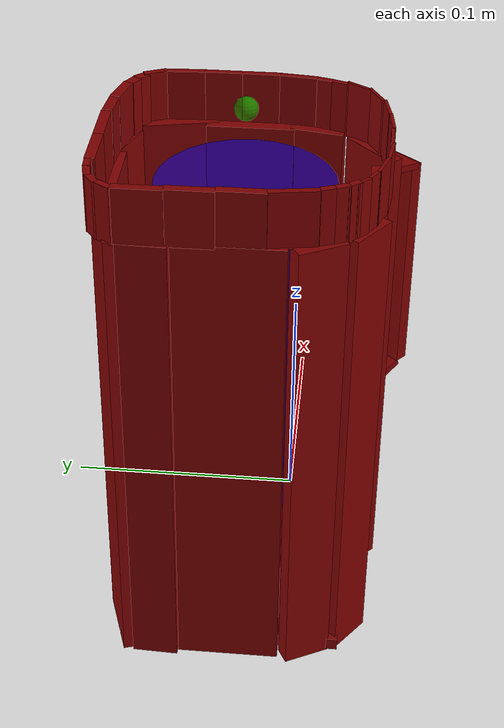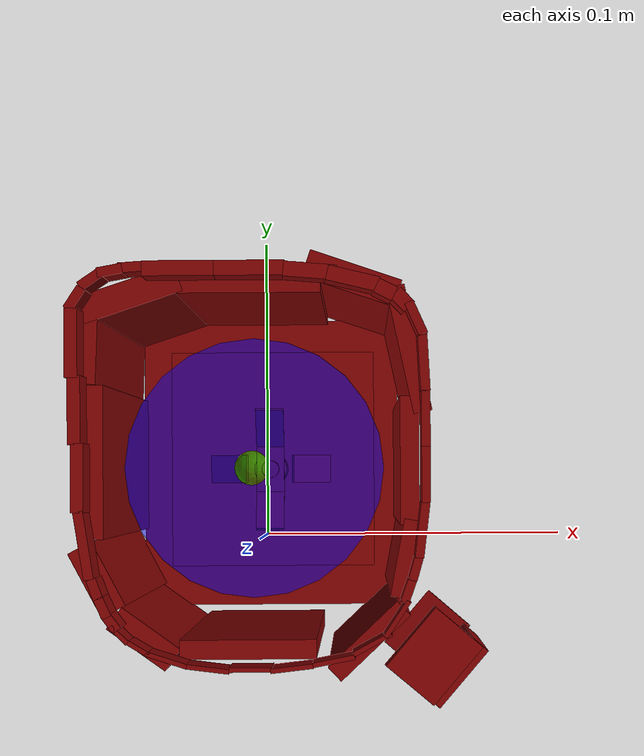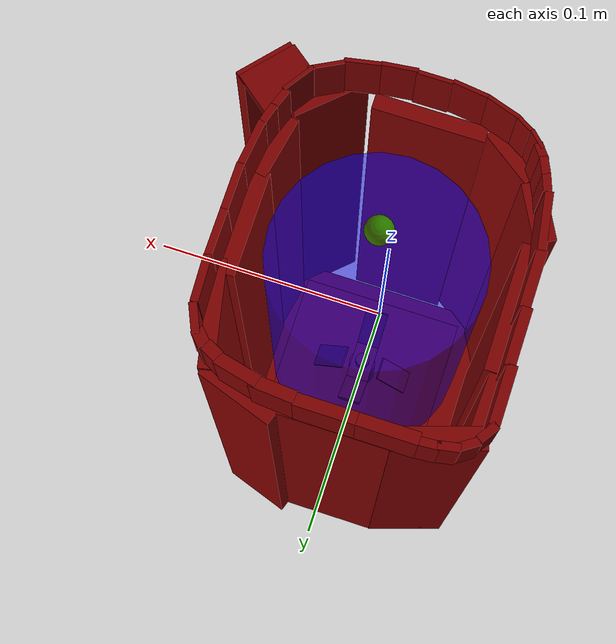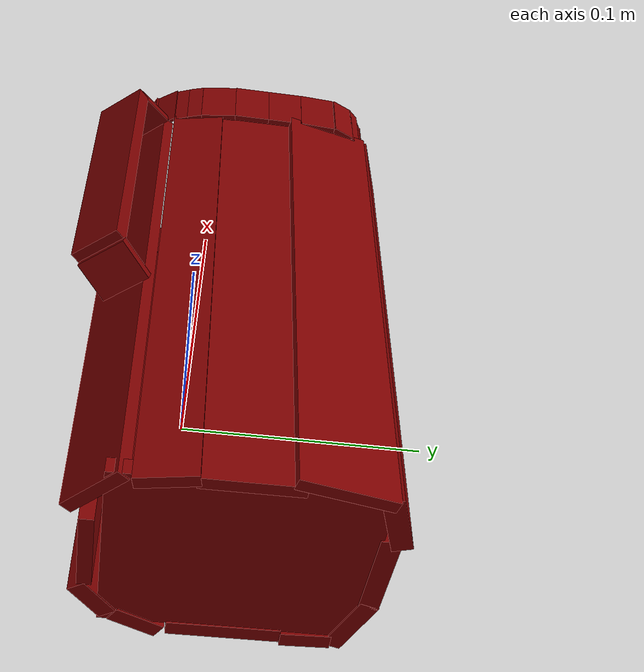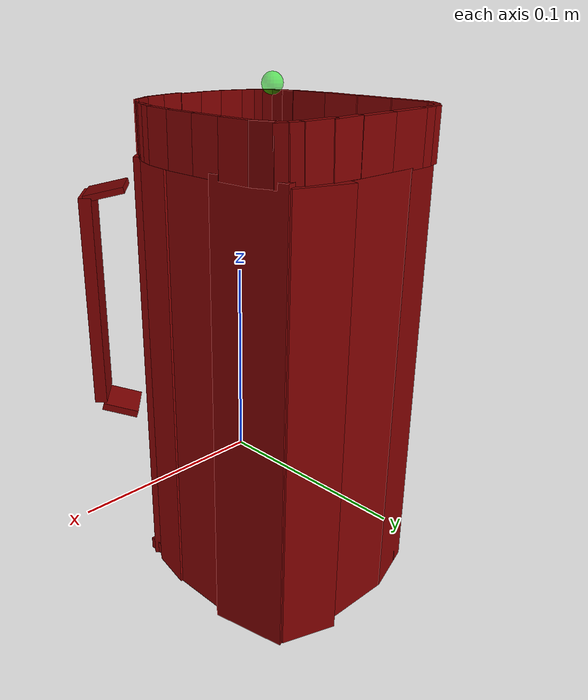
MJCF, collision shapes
<mujoco model="model">
  <option timestep="0.002" gravity="0.0 0.0 -9.81"/>
  <compiler angle="radian"/>
  <asset>
    <mesh file="visuals/blade.obj" name="blade_vis"/>
    <mesh file="visuals/pitcher.obj" name="pitcher_vis"/>
    <mesh file="visuals/pitcher_main.obj" name="pitcher_main_vis"/>
    <material name="pitcher_material" rgba="0.0231687780469656 0.0231687780469656 0.0231687780469656 0.8" shininess="0.44720000000000004" specular="0.31034482758620685"/>
    <texture file="visuals/T_BC001.png" name="blade_material" type="2d"/>
    <material name="blade_material" rgba="1 1 1 1.0" texture="blade_material" shininess="0.44720000000000004" specular="0.31034482758620685"/>
    <texture file="visuals/T_BC001.png" name="pitcher_main_material" type="2d"/>
    <material name="pitcher_main_material" rgba="1 1 1 1.0" texture="pitcher_main_material" shininess="0.44720000000000004" specular="0.31034482758620685"/>
  </asset>
  <default>
    <default class="visual">
      <geom conaffinity="0" contype="0" group="1" type="mesh"/>
    </default>
    <default class="collision">
      <geom group="0" rgba="0.5 0 0 0.5" solref="0.004 1" solimp="0.998 0.998 0.001"/>
    </default>
    <default class="spawn">
      <geom group="0" rgba="1 1 1 0.5" contype="0" conaffinity="0"/>
      <site group="0" rgba="1 1 1 0.5"/>
    </default>
    <default class="region">
      <geom group="1" conaffinity="0" contype="0" rgba="0 1 0 0" mass="0"/>
    </default>
  </default>
  <worldbody>
    <body>
      <body name="object">
        <body name="pitcher">
          <geom mesh="pitcher_vis" type="mesh" solimp="0.998 0.998 0.001" solref="0.001 1" friction="0.95 0.3 0.1" class="visual" material="pitcher_material"/>
          <geom type="box" pos="-0.00204070 0.07906260 0.04826499" size="0.022255271673202515 0.004169562365859747 0.11124669015407562" quat="1.0 0.0 0.0 0.0" class="collision"/>
          <geom type="box" pos="-0.00204070 -0.03178803 0.04826499" size="0.020503073930740356 0.002906262641772628 0.1112467423081398" quat="1.0 0.0 0.0 0.0" class="collision"/>
          <geom type="box" pos="-0.04904354 0.02445237 0.04826499" size="0.0039976914413273335 0.023106157779693604 0.11124677211046219" quat="1.0 0.0 0.0 0.0" class="collision"/>
          <geom class="collision" type="box" pos="0.06077758 -0.04032724 0.08946581" size="0.011404372751712799 0.003000497817993164 0.052568335086107254" quat="0.908416748046875 0.0 0.0 0.4180658161640167" name="pitcher_handle_0"/>
          <geom type="box" pos="0.04659230 0.02445237 0.04826499" size="0.0028223509434610605 0.01922968029975891 0.11305436491966248" quat="1.0 0.0 0.0 0.0" class="collision"/>
          <geom class="collision" type="box" pos="0.05387197 -0.03484775 0.14352105" size="0.011623568832874298 0.009709632024168968 0.001504981075413525" quat="0.9033353328704834 0.09594911336898804 0.04415709897875786 0.41572731733322144" name="pitcher_handle_2"/>
          <geom class="collision" type="box" pos="0.05408701 -0.03335019 0.03249847" size="0.011395718902349472 0.009031037800014019 0.0017822699155658484" quat="0.8995760083198547 -0.12642720341682434 -0.05818355828523636 0.4139974117279053" name="pitcher_handle_1"/>
          <geom type="box" pos="-0.00040757 0.02494217 -0.05911034" size="0.045719780027866364 0.051321711391210556 0.0031872245017439127" quat="1.0 0.0 0.0 0.0" class="collision"/>
          <geom type="box" pos="-0.05087845 0.01972900 0.17119868" size="0.0018874999368563294 0.010145186446607113 0.012653547339141369" quat="1.0 0.0 0.0 0.0" class="collision"/>
          <geom type="box" pos="0.05106356 0.02023902 0.17119868" size="0.0013032063143327832 0.008228748105466366 0.01265357993543148" quat="1.0 0.0 0.0 0.0" class="collision"/>
          <geom type="box" pos="-0.00048702 0.08090556 0.17119868" size="0.010520539246499538 0.0022074836306273937 0.01265360414981842" quat="1.0 0.0 0.0 0.0" class="collision"/>
          <geom type="box" pos="-0.00048702 -0.03650774 0.17119868" size="0.006283494643867016 0.0006978611927479506 0.01265357993543148" quat="1.0 0.0 0.0 0.0" class="collision"/>
          <geom type="box" pos="-0.02120484 0.08090556 0.17119868" size="0.010520530864596367 0.0022074836306273937 0.012653595767915249" quat="1.0 0.0 0.0 0.0" class="collision"/>
          <geom type="box" pos="0.01703493 0.08009607 0.17128454" size="0.002207484794780612 0.007749950513243675 0.01265357993543148" quat="0.7348265647888184 0.012943834997713566 0.0060357931070029736 0.6781046390533447" class="collision"/>
          <geom type="box" pos="0.02970541 0.07771542 0.17124450" size="0.0022074845619499683 0.007749950513243675 0.01265357993543148" quat="0.7845277786254883 0.012444397434592247 0.007007897831499577 0.6199291944503784" class="collision"/>
          <geom type="box" pos="0.03922710 0.07436613 0.17095648" size="0.0022074852604418993 0.0029618453700095415 0.012653580866754055" quat="0.8534063100814819 0.011510993354022503 0.008454038761556149 0.5210505723953247" class="collision"/>
          <geom type="box" pos="0.04415275 0.07136414 0.17079371" size="0.0022074852604418993 0.002961845835670829 0.012653580866754055" quat="0.9270679354667664 0.009975115768611431 0.010221092961728573 0.3746212422847748" class="collision"/>
          <geom type="box" pos="0.05106356 0.03664541 0.17119868" size="0.0013032063143327832 0.008228748105466366 0.01265357993543148" quat="1.0 0.0 0.0 0.0" class="collision"/>
          <geom type="box" pos="0.05062422 0.05280286 0.17119868" size="0.0014155411627143621 0.008228748105466366 0.01265357993543148" quat="0.9996613264083862 0.0 0.0 0.02602369897067547" class="collision"/>
          <geom type="box" pos="0.04842352 0.06587505 0.17119868" size="0.0014155411627143621 0.005163043737411499 0.01265357993543148" quat="0.20852075517177582 0.0 -0.0 -0.9780179262161255" class="collision"/>
          <geom type="box" pos="0.04994868 0.00398666 0.17119868" size="0.0013032063143327832 0.008228748105466366 0.01265357993543148" quat="0.9982454776763916 0.0 -0.0 -0.0592113696038723" class="collision"/>
          <geom type="box" pos="0.04791020 -0.00737382 0.17119868" size="0.0013032063143327832 0.0034902459010481834 0.01265357993543148" quat="0.13733436167240143 0.0 0.0 0.9905247688293457" class="collision"/>
          <geom type="box" pos="0.04578712 -0.01375236 0.17119868" size="0.0013032063143327832 0.0034902459010481834 0.01265357993543148" quat="0.16920353472232819 0.0 0.0 0.9855811595916748" class="collision"/>
          <geom type="box" pos="-0.01300254 -0.03623909 0.17119868" size="0.000697860203217715 0.006283494643867016 0.01265357993543148" quat="0.7504629492759705 0.0 0.0 0.6609125733375549" class="collision"/>
          <geom type="box" pos="-0.02514218 -0.03351200 0.17119868" size="0.000697860203217715 0.006283494643867016 0.01265357993543148" quat="0.8097994923591614 0.0 0.0 0.5867067575454712" class="collision"/>
          <geom type="box" pos="-0.03322269 -0.03014906 0.17119868" size="0.000697860203217715 0.0035535378847271204 0.01265357993543148" quat="0.4931698143482208 0.0 -0.0 -0.8699330687522888" class="collision"/>
          <geom type="box" pos="-0.03885729 -0.02612386 0.17119868" size="0.000697860203217715 0.0035535378847271204 0.01265357993543148" quat="0.3875330984592438 0.0 -0.0 -0.9218558073043823" class="collision"/>
          <geom type="box" pos="-0.05169886 0.03965150 0.17119868" size="0.001887502963654697 0.010145223699510098 0.012653571553528309" quat="1.0 0.0 0.0 0.0" class="collision"/>
          <geom type="box" pos="-0.05250519 0.05923183 0.17119868" size="0.0018875034293159842 0.010145229287445545 0.012653576210141182" quat="1.0 0.0 0.0 0.0" class="collision"/>
          <geom type="box" pos="-0.05130325 0.07222483 0.17119868" size="0.001473463256843388 0.0037509435787796974 0.01265357993543148" quat="0.9576771259307861 0.0 -0.0 -0.28784459829330444" class="collision"/>
          <geom type="box" pos="-0.04666586 0.07775902 0.17119868" size="0.001473463256843388 0.0037509435787796974 0.01265357993543148" quat="0.4700140058994293 0.0 0.0 0.8826589584350586" class="collision"/>
          <geom type="box" pos="-0.04104266 0.08033282 0.17119868" size="0.001473463256843388 0.0037509435787796974 0.01265357993543148" quat="0.7674436569213867 0.0 -0.0 -0.6411163806915283" class="collision"/>
          <geom type="box" pos="-0.03475921 0.08129459 0.17119868" size="0.001473463256843388 0.0037509435787796974 0.01265357993543148" quat="0.7298022508621216 0.0 -0.0 -0.6836583018302917" class="collision"/>
          <geom type="box" pos="-0.04913593 -0.00000116 0.17119868" size="0.001473463256843388 0.01009315811097622 0.01265357993543148" quat="0.9969274997711182 0.0 0.0 0.07832957059144974" class="collision"/>
          <geom type="box" pos="-0.04590378 -0.01272728 0.17119868" size="0.001473463256843388 0.0030641125049442053 0.01265357993543148" quat="0.9849292635917664 0.0 0.0 0.17295752465724945" class="collision"/>
          <geom type="box" pos="-0.04362711 -0.01819933 0.17119868" size="0.001473463256843388 0.0030641125049442053 0.01265357993543148" quat="0.9769006967544556 0.0 0.0 0.21369370818138123" class="collision"/>
          <geom type="box" pos="-0.04123650 -0.02234063 0.17119868" size="0.001473463256843388 0.0030641125049442053 0.01265357993543148" quat="0.9494522213935852 0.0 0.0 0.3139115571975708" class="collision"/>
          <geom type="box" pos="0.01153971 -0.03621034 0.17154786" size="0.000697860203217715 0.006283493712544441 0.01265357993543148" quat="0.665385901927948 0.0 0.0 0.7464995980262756" class="collision"/>
          <geom type="box" pos="0.02385174 -0.03410479 0.17154786" size="0.000697860203217715 0.006283494643867016 0.01265357993543148" quat="0.6366903185844421 0.0 0.0 0.7711195945739746" class="collision"/>
          <geom type="box" pos="0.03506337 -0.02928461 0.17154786" size="0.000697860203217715 0.006283494643867016 0.01265357993543148" quat="0.5134232640266418 0.0 0.0 0.8581355214118958" class="collision"/>
          <geom type="box" pos="0.04240683 -0.02200383 0.17154786" size="0.000697860203217715 0.006283494643867016 0.01265357993543148" quat="0.28951430320739746 0.0 0.0 0.9571737051010132" class="collision"/>
          <geom type="box" pos="-0.04717299 -0.01069073 0.04826499" size="0.0039976914413273335 0.010862612165510654 0.11124677211046219" quat="0.24137313663959503 0.0 -0.0 -0.9704324007034302" class="collision"/>
          <geom type="box" pos="-0.03325247 -0.02852082 0.04826499" size="0.0039976914413273335 0.010862612165510654 0.11124677211046219" quat="0.4553391635417938 0.0 -0.0 -0.8903180360794067" class="collision"/>
          <geom type="box" pos="0.04659230 0.05768983 0.04826499" size="0.002822357229888439 0.019229713827371597 0.1130545437335968" quat="0.9943493008613586 0.0 0.0 0.10615776479244232" class="collision"/>
          <geom type="box" pos="0.02968295 0.07908010 0.04826499" size="0.01447609718888998 0.004169562365859747 0.11124669015407562" quat="0.16311539709568024 0.0 0.0 0.986607015132904" class="collision"/>
          <geom type="box" pos="-0.03781039 0.07442696 0.04826499" size="0.01633487083017826 0.004169562365859747 0.11124669015407562" quat="0.987297773361206 0.0 0.0 0.15888087451457977" class="collision"/>
          <geom type="box" pos="-0.05101316 0.05829134 0.04826499" size="0.010405201464891434 0.004169562831521034 0.11124669015407562" quat="0.7210486531257629 0.0 0.0 0.6928844451904297" class="collision"/>
          <geom type="box" pos="0.03424450 -0.02957520 0.04826499" size="0.014315856620669365 0.002906263107433915 0.1112467423081398" quat="0.3690517544746399 0.0 -0.0 -0.929408848285675" class="collision"/>
          <geom type="box" pos="0.04554580 -0.00499799 0.04826499" size="0.002822357229888439 0.011789822019636631 0.1130545437335968" quat="0.9956033229827881 0.0 -0.0 -0.09366945177316666" class="collision"/>
          <body name="blade">
            <geom mesh="blade_vis" type="mesh" solimp="0.998 0.998 0.001" solref="0.001 1" friction="0.95 0.3 0.1" class="visual" material="blade_material"/>
            <geom type="cylinder" pos="0.00075971 0.02246093 -0.01266881" size="0.005605807062238455 0.010063519701361656" quat="1.0 0.0 0.0 0.0" class="collision"/>
            <geom type="box" pos="0.00069256 0.02240113 -0.00142611" size="0.004780033137649298 0.008097464218735695 0.00041572406189516187" quat="1.0 0.0 0.0 0.0" class="collision"/>
            <geom type="box" pos="0.00069256 0.03663609 0.00474931" size="0.004780060611665249 0.008834321983158588 0.0004157274670433253" quat="0.9251607656478882 0.3795754909515381 -8.428268992755907e-17 -9.018257868486607e-24" class="collision"/>
            <geom type="box" pos="0.00069256 0.00821093 0.00474931" size="0.004780060611665249 0.008834323845803738 0.0004157275543548167" quat="6.984769385098843e-08 2.8657149542254956e-08 0.3795754909515381 0.9251607656478882" class="collision"/>
            <geom type="box" pos="0.01479775 0.02258812 -0.00830056" size="0.004780060611665249 0.008834323845803738 0.0004157275543548167" quat="0.2684004306793213 -0.6541874408721924 -0.6541874408721924 0.26840049028396606" class="collision"/>
            <geom type="box" pos="-0.01371895 0.02258812 -0.00830056" size="0.004780060611665249 0.008834323845803738 0.0004157275543548167" quat="0.6541875600814819 0.2684003710746765 -0.26840052008628845 -0.6541873216629028" class="collision"/>
            <geom type="cylinder" pos="0.00075971 0.02246093 0.00058299" size="0.002967052860185504 0.0029167153406888247" quat="1.0 0.0 0.0 0.0" class="collision"/>
          </body>
          <body name="pitcher_main">
            <geom class="region" type="cylinder" size="0.03874508664011955 0.07353714853525162" pos="0.00014576 0.02244258 0.08496341" rgba="0 0 1 0.5" name="reg_int"/>
            <geom mesh="pitcher_main_vis" type="mesh" solimp="0.998 0.998 0.001" solref="0.001 1" friction="0.95 0.3 0.1" class="visual" material="pitcher_main_material"/>
            <geom type="box" pos="0.00099720 0.02612315 -0.04106399" size="0.03561051934957504 0.03759729862213135 0.017532385885715485" quat="1.0 0.0 0.0 0.0" class="collision"/>
          </body>
        </body>
        <geom class="region" name="reg_bbox" density="0" type="box" pos="0.0072000000000000015 0.016400500000000002 0.0597685" size="0.061757000000000006 0.0668345 0.1240685"/>
      </body>
      <site rgba="0 1 0 0.5" size="0.005" pos="0.00055089 0.02238399 0.19197600" name="anchor_site"/>
    </body>
  </worldbody>
</mujoco>
